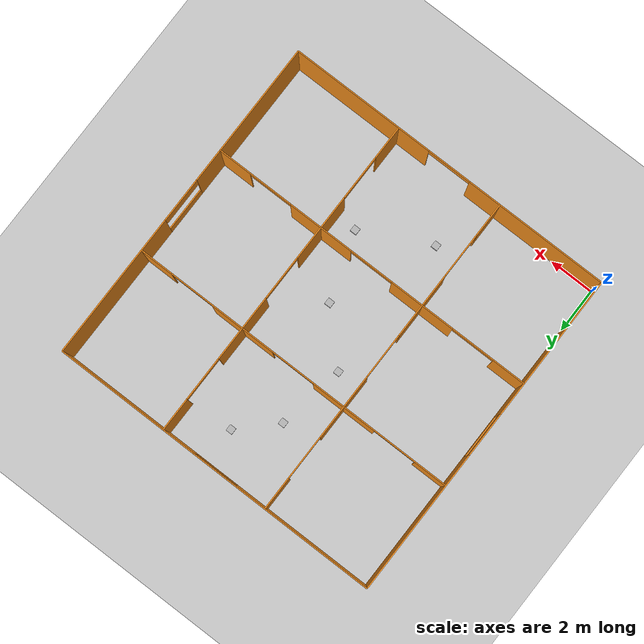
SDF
<sdf version="1.6">
  <world name="default">
    <include><uri>model://rirpc_box</uri><name>cube_5</name><pose>8.125 13.375 0 0 0 0</pose></include><include><uri>model://rirpc_box</uri><name>cube_4</name><pose>6.625 11.875 0 0 0 0</pose></include><include><uri>model://rirpc_box</uri><name>cube_3</name><pose>6.125 8.875 0 0 0 0</pose></include><include><uri>model://rirpc_box</uri><name>cube_2</name><pose>8.125 6.875 0 0 0 0</pose></include><include><uri>model://rirpc_box</uri><name>cube_1</name><pose>9.125 3.875 0 0 0 0</pose></include><include><uri>model://rirpc_box</uri><name>cube_0</name><pose>6.125 2.375 0 0 0 0</pose></include><model name="window_3">
  <pose frame="">7.5 15.0 1.75 0 0 -0.0</pose>
  <link name="top">
    <pose>0 0 1.25 0 0 0</pose>
    <inertial>
      <mass>1</mass>
      <inertia>
        <ixx>0</ixx>
        <ixy>0</ixy>
        <ixz>0</ixz>
        <iyy>0</iyy>
        <iyz>0</iyz>
        <izz>0</izz>
      </inertia>
    </inertial>
    <collision name="collision">
      <geometry>
        <box>
          <size>2.0 0.05 1.0</size>
        </box>
      </geometry>
      <max_contacts>10</max_contacts>
      <surface>
        <contact>
          <ode/>
        </contact>
        <bounce/>
        <friction>
          <torsional>
            <ode/>
          </torsional>
          <ode/>
        </friction>
      </surface>
    </collision>
    <visual name="visual">
      <geometry>
        <box>
          <size>2.0 0.05 1.0</size>
        </box>
      </geometry>
      <material>
        <script>
          <name>Gazebo/Orange</name>
          <uri>file://media/materials/scripts/gazebo.material</uri>
        </script>
      </material>
    </visual>
    <self_collide>0</self_collide>
    <enable_wind>0</enable_wind>
    <kinematic>0</kinematic>
  </link>
  <link name="bot">
    <pose>0 0 -1.25 0 0 0</pose>
    <inertial>
      <mass>1</mass>
      <inertia>
        <ixx>0</ixx>
        <ixy>0</ixy>
        <ixz>0</ixz>
        <iyy>0</iyy>
        <iyz>0</iyz>
        <izz>0</izz>
      </inertia>
    </inertial>
    <collision name="collision">
      <geometry>
        <box>
          <size>2.0 0.05 1.0</size>
        </box>
      </geometry>
      <max_contacts>10</max_contacts>
      <surface>
        <contact>
          <ode/>
        </contact>
        <bounce/>
        <friction>
          <torsional>
            <ode/>
          </torsional>
          <ode/>
        </friction>
      </surface>
    </collision>
    <visual name="visual">
      <geometry>
        <box>
          <size>2.0 0.05 1.0</size>
        </box>
      </geometry>
      <material>
        <script>
          <name>Gazebo/Orange</name>
          <uri>file://media/materials/scripts/gazebo.material</uri>
        </script>
      </material>
    </visual>
    <self_collide>0</self_collide>
    <enable_wind>0</enable_wind>
    <kinematic>0</kinematic>
  </link>
	<static>1</static>
</model><model name="window_2">
  <pose frame="">0.0 7.5 1.75 0 0 1.5707963267948966</pose>
  <link name="top">
    <pose>0 0 1.25 0 0 0</pose>
    <inertial>
      <mass>1</mass>
      <inertia>
        <ixx>0</ixx>
        <ixy>0</ixy>
        <ixz>0</ixz>
        <iyy>0</iyy>
        <iyz>0</iyz>
        <izz>0</izz>
      </inertia>
    </inertial>
    <collision name="collision">
      <geometry>
        <box>
          <size>2.0 0.05 1.0</size>
        </box>
      </geometry>
      <max_contacts>10</max_contacts>
      <surface>
        <contact>
          <ode/>
        </contact>
        <bounce/>
        <friction>
          <torsional>
            <ode/>
          </torsional>
          <ode/>
        </friction>
      </surface>
    </collision>
    <visual name="visual">
      <geometry>
        <box>
          <size>2.0 0.05 1.0</size>
        </box>
      </geometry>
      <material>
        <script>
          <name>Gazebo/Orange</name>
          <uri>file://media/materials/scripts/gazebo.material</uri>
        </script>
      </material>
    </visual>
    <self_collide>0</self_collide>
    <enable_wind>0</enable_wind>
    <kinematic>0</kinematic>
  </link>
  <link name="bot">
    <pose>0 0 -1.25 0 0 0</pose>
    <inertial>
      <mass>1</mass>
      <inertia>
        <ixx>0</ixx>
        <ixy>0</ixy>
        <ixz>0</ixz>
        <iyy>0</iyy>
        <iyz>0</iyz>
        <izz>0</izz>
      </inertia>
    </inertial>
    <collision name="collision">
      <geometry>
        <box>
          <size>2.0 0.05 1.0</size>
        </box>
      </geometry>
      <max_contacts>10</max_contacts>
      <surface>
        <contact>
          <ode/>
        </contact>
        <bounce/>
        <friction>
          <torsional>
            <ode/>
          </torsional>
          <ode/>
        </friction>
      </surface>
    </collision>
    <visual name="visual">
      <geometry>
        <box>
          <size>2.0 0.05 1.0</size>
        </box>
      </geometry>
      <material>
        <script>
          <name>Gazebo/Orange</name>
          <uri>file://media/materials/scripts/gazebo.material</uri>
        </script>
      </material>
    </visual>
    <self_collide>0</self_collide>
    <enable_wind>0</enable_wind>
    <kinematic>0</kinematic>
  </link>
	<static>1</static>
</model><model name="window_1">
  <pose frame="">15.0 7.5 1.75 0 0 1.5707963267948966</pose>
  <link name="top">
    <pose>0 0 1.25 0 0 0</pose>
    <inertial>
      <mass>1</mass>
      <inertia>
        <ixx>0</ixx>
        <ixy>0</ixy>
        <ixz>0</ixz>
        <iyy>0</iyy>
        <iyz>0</iyz>
        <izz>0</izz>
      </inertia>
    </inertial>
    <collision name="collision">
      <geometry>
        <box>
          <size>2.0 0.05 1.0</size>
        </box>
      </geometry>
      <max_contacts>10</max_contacts>
      <surface>
        <contact>
          <ode/>
        </contact>
        <bounce/>
        <friction>
          <torsional>
            <ode/>
          </torsional>
          <ode/>
        </friction>
      </surface>
    </collision>
    <visual name="visual">
      <geometry>
        <box>
          <size>2.0 0.05 1.0</size>
        </box>
      </geometry>
      <material>
        <script>
          <name>Gazebo/Orange</name>
          <uri>file://media/materials/scripts/gazebo.material</uri>
        </script>
      </material>
    </visual>
    <self_collide>0</self_collide>
    <enable_wind>0</enable_wind>
    <kinematic>0</kinematic>
  </link>
  <link name="bot">
    <pose>0 0 -1.25 0 0 0</pose>
    <inertial>
      <mass>1</mass>
      <inertia>
        <ixx>0</ixx>
        <ixy>0</ixy>
        <ixz>0</ixz>
        <iyy>0</iyy>
        <iyz>0</iyz>
        <izz>0</izz>
      </inertia>
    </inertial>
    <collision name="collision">
      <geometry>
        <box>
          <size>2.0 0.05 1.0</size>
        </box>
      </geometry>
      <max_contacts>10</max_contacts>
      <surface>
        <contact>
          <ode/>
        </contact>
        <bounce/>
        <friction>
          <torsional>
            <ode/>
          </torsional>
          <ode/>
        </friction>
      </surface>
    </collision>
    <visual name="visual">
      <geometry>
        <box>
          <size>2.0 0.05 1.0</size>
        </box>
      </geometry>
      <material>
        <script>
          <name>Gazebo/Orange</name>
          <uri>file://media/materials/scripts/gazebo.material</uri>
        </script>
      </material>
    </visual>
    <self_collide>0</self_collide>
    <enable_wind>0</enable_wind>
    <kinematic>0</kinematic>
  </link>
	<static>1</static>
</model><model name="box_38">
  <pose frame="">10.0 2.5 3.25 0 0 1.5707963267948966</pose>
  <link name="link">
    <inertial>
      <mass>1</mass>
      <inertia>
        <ixx>0</ixx>
        <ixy>0</ixy>
        <ixz>0</ixz>
        <iyy>0</iyy>
        <iyz>0</iyz>
        <izz>0</izz>
      </inertia>
    </inertial>
    <collision name="collision">
      <geometry>
        <box>
          <size>2.0 0.05 0.5</size>
        </box>
      </geometry>
      <max_contacts>10</max_contacts>
      <surface>
        <contact>
          <ode/>
        </contact>
        <bounce/>
        <friction>
          <torsional>
            <ode/>
          </torsional>
          <ode/>
        </friction>
      </surface>
    </collision>
    <visual name="visual">
      <geometry>
        <box>
          <size>2.0 0.05 0.5</size>
        </box>
      </geometry>
      <material>
        <script>
          <name>Gazebo/Orange</name>
          <uri>file://media/materials/scripts/gazebo.material</uri>
        </script>
      </material>
    </visual>
    <self_collide>0</self_collide>
    <enable_wind>0</enable_wind>
    <kinematic>0</kinematic>
  </link>
	<static>1</static>
</model><model name="box_37">
  <pose frame="">5.0 2.5 3.25 0 0 1.5707963267948966</pose>
  <link name="link">
    <inertial>
      <mass>1</mass>
      <inertia>
        <ixx>0</ixx>
        <ixy>0</ixy>
        <ixz>0</ixz>
        <iyy>0</iyy>
        <iyz>0</iyz>
        <izz>0</izz>
      </inertia>
    </inertial>
    <collision name="collision">
      <geometry>
        <box>
          <size>2.0 0.05 0.5</size>
        </box>
      </geometry>
      <max_contacts>10</max_contacts>
      <surface>
        <contact>
          <ode/>
        </contact>
        <bounce/>
        <friction>
          <torsional>
            <ode/>
          </torsional>
          <ode/>
        </friction>
      </surface>
    </collision>
    <visual name="visual">
      <geometry>
        <box>
          <size>2.0 0.05 0.5</size>
        </box>
      </geometry>
      <material>
        <script>
          <name>Gazebo/Orange</name>
          <uri>file://media/materials/scripts/gazebo.material</uri>
        </script>
      </material>
    </visual>
    <self_collide>0</self_collide>
    <enable_wind>0</enable_wind>
    <kinematic>0</kinematic>
  </link>
	<static>1</static>
</model><model name="box_36">
  <pose frame="">2.5 5.0 3.25 0 0 -3.141592653589793</pose>
  <link name="link">
    <inertial>
      <mass>1</mass>
      <inertia>
        <ixx>0</ixx>
        <ixy>0</ixy>
        <ixz>0</ixz>
        <iyy>0</iyy>
        <iyz>0</iyz>
        <izz>0</izz>
      </inertia>
    </inertial>
    <collision name="collision">
      <geometry>
        <box>
          <size>2.0 0.05 0.5</size>
        </box>
      </geometry>
      <max_contacts>10</max_contacts>
      <surface>
        <contact>
          <ode/>
        </contact>
        <bounce/>
        <friction>
          <torsional>
            <ode/>
          </torsional>
          <ode/>
        </friction>
      </surface>
    </collision>
    <visual name="visual">
      <geometry>
        <box>
          <size>2.0 0.05 0.5</size>
        </box>
      </geometry>
      <material>
        <script>
          <name>Gazebo/Orange</name>
          <uri>file://media/materials/scripts/gazebo.material</uri>
        </script>
      </material>
    </visual>
    <self_collide>0</self_collide>
    <enable_wind>0</enable_wind>
    <kinematic>0</kinematic>
  </link>
	<static>1</static>
</model><model name="box_35">
  <pose frame="">2.5 10.0 3.25 0 0 -3.141592653589793</pose>
  <link name="link">
    <inertial>
      <mass>1</mass>
      <inertia>
        <ixx>0</ixx>
        <ixy>0</ixy>
        <ixz>0</ixz>
        <iyy>0</iyy>
        <iyz>0</iyz>
        <izz>0</izz>
      </inertia>
    </inertial>
    <collision name="collision">
      <geometry>
        <box>
          <size>2.0 0.05 0.5</size>
        </box>
      </geometry>
      <max_contacts>10</max_contacts>
      <surface>
        <contact>
          <ode/>
        </contact>
        <bounce/>
        <friction>
          <torsional>
            <ode/>
          </torsional>
          <ode/>
        </friction>
      </surface>
    </collision>
    <visual name="visual">
      <geometry>
        <box>
          <size>2.0 0.05 0.5</size>
        </box>
      </geometry>
      <material>
        <script>
          <name>Gazebo/Orange</name>
          <uri>file://media/materials/scripts/gazebo.material</uri>
        </script>
      </material>
    </visual>
    <self_collide>0</self_collide>
    <enable_wind>0</enable_wind>
    <kinematic>0</kinematic>
  </link>
	<static>1</static>
</model><model name="box_34">
  <pose frame="">5.0 12.5 3.25 0 0 1.5707963267948966</pose>
  <link name="link">
    <inertial>
      <mass>1</mass>
      <inertia>
        <ixx>0</ixx>
        <ixy>0</ixy>
        <ixz>0</ixz>
        <iyy>0</iyy>
        <iyz>0</iyz>
        <izz>0</izz>
      </inertia>
    </inertial>
    <collision name="collision">
      <geometry>
        <box>
          <size>2.0 0.05 0.5</size>
        </box>
      </geometry>
      <max_contacts>10</max_contacts>
      <surface>
        <contact>
          <ode/>
        </contact>
        <bounce/>
        <friction>
          <torsional>
            <ode/>
          </torsional>
          <ode/>
        </friction>
      </surface>
    </collision>
    <visual name="visual">
      <geometry>
        <box>
          <size>2.0 0.05 0.5</size>
        </box>
      </geometry>
      <material>
        <script>
          <name>Gazebo/Orange</name>
          <uri>file://media/materials/scripts/gazebo.material</uri>
        </script>
      </material>
    </visual>
    <self_collide>0</self_collide>
    <enable_wind>0</enable_wind>
    <kinematic>0</kinematic>
  </link>
	<static>1</static>
</model><model name="box_33">
  <pose frame="">10.0 12.5 3.25 0 0 -1.5707963267948966</pose>
  <link name="link">
    <inertial>
      <mass>1</mass>
      <inertia>
        <ixx>0</ixx>
        <ixy>0</ixy>
        <ixz>0</ixz>
        <iyy>0</iyy>
        <iyz>0</iyz>
        <izz>0</izz>
      </inertia>
    </inertial>
    <collision name="collision">
      <geometry>
        <box>
          <size>2.0 0.05 0.5</size>
        </box>
      </geometry>
      <max_contacts>10</max_contacts>
      <surface>
        <contact>
          <ode/>
        </contact>
        <bounce/>
        <friction>
          <torsional>
            <ode/>
          </torsional>
          <ode/>
        </friction>
      </surface>
    </collision>
    <visual name="visual">
      <geometry>
        <box>
          <size>2.0 0.05 0.5</size>
        </box>
      </geometry>
      <material>
        <script>
          <name>Gazebo/Orange</name>
          <uri>file://media/materials/scripts/gazebo.material</uri>
        </script>
      </material>
    </visual>
    <self_collide>0</self_collide>
    <enable_wind>0</enable_wind>
    <kinematic>0</kinematic>
  </link>
	<static>1</static>
</model><model name="box_32">
  <pose frame="">12.5 10.0 3.25 0 0 -3.141592653589793</pose>
  <link name="link">
    <inertial>
      <mass>1</mass>
      <inertia>
        <ixx>0</ixx>
        <ixy>0</ixy>
        <ixz>0</ixz>
        <iyy>0</iyy>
        <iyz>0</iyz>
        <izz>0</izz>
      </inertia>
    </inertial>
    <collision name="collision">
      <geometry>
        <box>
          <size>2.0 0.05 0.5</size>
        </box>
      </geometry>
      <max_contacts>10</max_contacts>
      <surface>
        <contact>
          <ode/>
        </contact>
        <bounce/>
        <friction>
          <torsional>
            <ode/>
          </torsional>
          <ode/>
        </friction>
      </surface>
    </collision>
    <visual name="visual">
      <geometry>
        <box>
          <size>2.0 0.05 0.5</size>
        </box>
      </geometry>
      <material>
        <script>
          <name>Gazebo/Orange</name>
          <uri>file://media/materials/scripts/gazebo.material</uri>
        </script>
      </material>
    </visual>
    <self_collide>0</self_collide>
    <enable_wind>0</enable_wind>
    <kinematic>0</kinematic>
  </link>
	<static>1</static>
</model><model name="box_31">
  <pose frame="">12.5 5.0 3.25 0 0 -3.141592653589793</pose>
  <link name="link">
    <inertial>
      <mass>1</mass>
      <inertia>
        <ixx>0</ixx>
        <ixy>0</ixy>
        <ixz>0</ixz>
        <iyy>0</iyy>
        <iyz>0</iyz>
        <izz>0</izz>
      </inertia>
    </inertial>
    <collision name="collision">
      <geometry>
        <box>
          <size>2.0 0.05 0.5</size>
        </box>
      </geometry>
      <max_contacts>10</max_contacts>
      <surface>
        <contact>
          <ode/>
        </contact>
        <bounce/>
        <friction>
          <torsional>
            <ode/>
          </torsional>
          <ode/>
        </friction>
      </surface>
    </collision>
    <visual name="visual">
      <geometry>
        <box>
          <size>2.0 0.05 0.5</size>
        </box>
      </geometry>
      <material>
        <script>
          <name>Gazebo/Orange</name>
          <uri>file://media/materials/scripts/gazebo.material</uri>
        </script>
      </material>
    </visual>
    <self_collide>0</self_collide>
    <enable_wind>0</enable_wind>
    <kinematic>0</kinematic>
  </link>
	<static>1</static>
</model><model name="box_30">
  <pose frame="">10.0 7.5 3.25 0 0 1.5707963267948966</pose>
  <link name="link">
    <inertial>
      <mass>1</mass>
      <inertia>
        <ixx>0</ixx>
        <ixy>0</ixy>
        <ixz>0</ixz>
        <iyy>0</iyy>
        <iyz>0</iyz>
        <izz>0</izz>
      </inertia>
    </inertial>
    <collision name="collision">
      <geometry>
        <box>
          <size>2.0 0.05 0.5</size>
        </box>
      </geometry>
      <max_contacts>10</max_contacts>
      <surface>
        <contact>
          <ode/>
        </contact>
        <bounce/>
        <friction>
          <torsional>
            <ode/>
          </torsional>
          <ode/>
        </friction>
      </surface>
    </collision>
    <visual name="visual">
      <geometry>
        <box>
          <size>2.0 0.05 0.5</size>
        </box>
      </geometry>
      <material>
        <script>
          <name>Gazebo/Orange</name>
          <uri>file://media/materials/scripts/gazebo.material</uri>
        </script>
      </material>
    </visual>
    <self_collide>0</self_collide>
    <enable_wind>0</enable_wind>
    <kinematic>0</kinematic>
  </link>
	<static>1</static>
</model><model name="box_29">
  <pose frame="">5.0 7.5 3.25 0 0 1.5707963267948966</pose>
  <link name="link">
    <inertial>
      <mass>1</mass>
      <inertia>
        <ixx>0</ixx>
        <ixy>0</ixy>
        <ixz>0</ixz>
        <iyy>0</iyy>
        <iyz>0</iyz>
        <izz>0</izz>
      </inertia>
    </inertial>
    <collision name="collision">
      <geometry>
        <box>
          <size>2.0 0.05 0.5</size>
        </box>
      </geometry>
      <max_contacts>10</max_contacts>
      <surface>
        <contact>
          <ode/>
        </contact>
        <bounce/>
        <friction>
          <torsional>
            <ode/>
          </torsional>
          <ode/>
        </friction>
      </surface>
    </collision>
    <visual name="visual">
      <geometry>
        <box>
          <size>2.0 0.05 0.5</size>
        </box>
      </geometry>
      <material>
        <script>
          <name>Gazebo/Orange</name>
          <uri>file://media/materials/scripts/gazebo.material</uri>
        </script>
      </material>
    </visual>
    <self_collide>0</self_collide>
    <enable_wind>0</enable_wind>
    <kinematic>0</kinematic>
  </link>
	<static>1</static>
</model><model name="box_28">
  <pose frame="">7.5 10.0 3.25 0 0 -0.0</pose>
  <link name="link">
    <inertial>
      <mass>1</mass>
      <inertia>
        <ixx>0</ixx>
        <ixy>0</ixy>
        <ixz>0</ixz>
        <iyy>0</iyy>
        <iyz>0</iyz>
        <izz>0</izz>
      </inertia>
    </inertial>
    <collision name="collision">
      <geometry>
        <box>
          <size>2.0 0.05 0.5</size>
        </box>
      </geometry>
      <max_contacts>10</max_contacts>
      <surface>
        <contact>
          <ode/>
        </contact>
        <bounce/>
        <friction>
          <torsional>
            <ode/>
          </torsional>
          <ode/>
        </friction>
      </surface>
    </collision>
    <visual name="visual">
      <geometry>
        <box>
          <size>2.0 0.05 0.5</size>
        </box>
      </geometry>
      <material>
        <script>
          <name>Gazebo/Orange</name>
          <uri>file://media/materials/scripts/gazebo.material</uri>
        </script>
      </material>
    </visual>
    <self_collide>0</self_collide>
    <enable_wind>0</enable_wind>
    <kinematic>0</kinematic>
  </link>
	<static>1</static>
</model><model name="box_27">
  <pose frame="">7.5 5.0 3.25 0 0 -0.0</pose>
  <link name="link">
    <inertial>
      <mass>1</mass>
      <inertia>
        <ixx>0</ixx>
        <ixy>0</ixy>
        <ixz>0</ixz>
        <iyy>0</iyy>
        <iyz>0</iyz>
        <izz>0</izz>
      </inertia>
    </inertial>
    <collision name="collision">
      <geometry>
        <box>
          <size>2.0 0.05 0.5</size>
        </box>
      </geometry>
      <max_contacts>10</max_contacts>
      <surface>
        <contact>
          <ode/>
        </contact>
        <bounce/>
        <friction>
          <torsional>
            <ode/>
          </torsional>
          <ode/>
        </friction>
      </surface>
    </collision>
    <visual name="visual">
      <geometry>
        <box>
          <size>2.0 0.05 0.5</size>
        </box>
      </geometry>
      <material>
        <script>
          <name>Gazebo/Orange</name>
          <uri>file://media/materials/scripts/gazebo.material</uri>
        </script>
      </material>
    </visual>
    <self_collide>0</self_collide>
    <enable_wind>0</enable_wind>
    <kinematic>0</kinematic>
  </link>
	<static>1</static>
</model><model name="box_26">
  <pose frame="">7.5 0.0 3.25 0 0 -3.141592653589793</pose>
  <link name="link">
    <inertial>
      <mass>1</mass>
      <inertia>
        <ixx>0</ixx>
        <ixy>0</ixy>
        <ixz>0</ixz>
        <iyy>0</iyy>
        <iyz>0</iyz>
        <izz>0</izz>
      </inertia>
    </inertial>
    <collision name="collision">
      <geometry>
        <box>
          <size>2.0 0.05 0.5</size>
        </box>
      </geometry>
      <max_contacts>10</max_contacts>
      <surface>
        <contact>
          <ode/>
        </contact>
        <bounce/>
        <friction>
          <torsional>
            <ode/>
          </torsional>
          <ode/>
        </friction>
      </surface>
    </collision>
    <visual name="visual">
      <geometry>
        <box>
          <size>2.0 0.05 0.5</size>
        </box>
      </geometry>
      <material>
        <script>
          <name>Gazebo/Orange</name>
          <uri>file://media/materials/scripts/gazebo.material</uri>
        </script>
      </material>
    </visual>
    <self_collide>0</self_collide>
    <enable_wind>0</enable_wind>
    <kinematic>0</kinematic>
  </link>
	<static>1</static>
</model><model name="box_25">
  <pose frame="">3.25 15.0 1.75 0 0 -0.0</pose>
  <link name="link">
    <inertial>
      <mass>1</mass>
      <inertia>
        <ixx>0</ixx>
        <ixy>0</ixy>
        <ixz>0</ixz>
        <iyy>0</iyy>
        <iyz>0</iyz>
        <izz>0</izz>
      </inertia>
    </inertial>
    <collision name="collision">
      <geometry>
        <box>
          <size>6.5 0.05 3.5</size>
        </box>
      </geometry>
      <max_contacts>10</max_contacts>
      <surface>
        <contact>
          <ode/>
        </contact>
        <bounce/>
        <friction>
          <torsional>
            <ode/>
          </torsional>
          <ode/>
        </friction>
      </surface>
    </collision>
    <visual name="visual">
      <geometry>
        <box>
          <size>6.5 0.05 3.5</size>
        </box>
      </geometry>
      <material>
        <script>
          <name>Gazebo/Orange</name>
          <uri>file://media/materials/scripts/gazebo.material</uri>
        </script>
      </material>
    </visual>
    <self_collide>0</self_collide>
    <enable_wind>0</enable_wind>
    <kinematic>0</kinematic>
  </link>
	<static>1</static>
</model><model name="box_24">
  <pose frame="">11.75 15.0 1.75 0 0 -0.0</pose>
  <link name="link">
    <inertial>
      <mass>1</mass>
      <inertia>
        <ixx>0</ixx>
        <ixy>0</ixy>
        <ixz>0</ixz>
        <iyy>0</iyy>
        <iyz>0</iyz>
        <izz>0</izz>
      </inertia>
    </inertial>
    <collision name="collision">
      <geometry>
        <box>
          <size>6.5 0.05 3.5</size>
        </box>
      </geometry>
      <max_contacts>10</max_contacts>
      <surface>
        <contact>
          <ode/>
        </contact>
        <bounce/>
        <friction>
          <torsional>
            <ode/>
          </torsional>
          <ode/>
        </friction>
      </surface>
    </collision>
    <visual name="visual">
      <geometry>
        <box>
          <size>6.5 0.05 3.5</size>
        </box>
      </geometry>
      <material>
        <script>
          <name>Gazebo/Orange</name>
          <uri>file://media/materials/scripts/gazebo.material</uri>
        </script>
      </material>
    </visual>
    <self_collide>0</self_collide>
    <enable_wind>0</enable_wind>
    <kinematic>0</kinematic>
  </link>
	<static>1</static>
</model><model name="box_23">
  <pose frame="">5.75 5.0 1.75 0 0 -3.141592653589793</pose>
  <link name="link">
    <inertial>
      <mass>1</mass>
      <inertia>
        <ixx>0</ixx>
        <ixy>0</ixy>
        <ixz>0</ixz>
        <iyy>0</iyy>
        <iyz>0</iyz>
        <izz>0</izz>
      </inertia>
    </inertial>
    <collision name="collision">
      <geometry>
        <box>
          <size>1.5 0.05 3.5</size>
        </box>
      </geometry>
      <max_contacts>10</max_contacts>
      <surface>
        <contact>
          <ode/>
        </contact>
        <bounce/>
        <friction>
          <torsional>
            <ode/>
          </torsional>
          <ode/>
        </friction>
      </surface>
    </collision>
    <visual name="visual">
      <geometry>
        <box>
          <size>1.5 0.05 3.5</size>
        </box>
      </geometry>
      <material>
        <script>
          <name>Gazebo/Orange</name>
          <uri>file://media/materials/scripts/gazebo.material</uri>
        </script>
      </material>
    </visual>
    <self_collide>0</self_collide>
    <enable_wind>0</enable_wind>
    <kinematic>0</kinematic>
  </link>
	<static>1</static>
</model><model name="box_22">
  <pose frame="">4.25 5.0 1.75 0 0 -3.141592653589793</pose>
  <link name="link">
    <inertial>
      <mass>1</mass>
      <inertia>
        <ixx>0</ixx>
        <ixy>0</ixy>
        <ixz>0</ixz>
        <iyy>0</iyy>
        <iyz>0</iyz>
        <izz>0</izz>
      </inertia>
    </inertial>
    <collision name="collision">
      <geometry>
        <box>
          <size>1.5 0.05 3.5</size>
        </box>
      </geometry>
      <max_contacts>10</max_contacts>
      <surface>
        <contact>
          <ode/>
        </contact>
        <bounce/>
        <friction>
          <torsional>
            <ode/>
          </torsional>
          <ode/>
        </friction>
      </surface>
    </collision>
    <visual name="visual">
      <geometry>
        <box>
          <size>1.5 0.05 3.5</size>
        </box>
      </geometry>
      <material>
        <script>
          <name>Gazebo/Orange</name>
          <uri>file://media/materials/scripts/gazebo.material</uri>
        </script>
      </material>
    </visual>
    <self_collide>0</self_collide>
    <enable_wind>0</enable_wind>
    <kinematic>0</kinematic>
  </link>
	<static>1</static>
</model><model name="box_21">
  <pose frame="">0.75 5.0 1.75 0 0 -3.141592653589793</pose>
  <link name="link">
    <inertial>
      <mass>1</mass>
      <inertia>
        <ixx>0</ixx>
        <ixy>0</ixy>
        <ixz>0</ixz>
        <iyy>0</iyy>
        <iyz>0</iyz>
        <izz>0</izz>
      </inertia>
    </inertial>
    <collision name="collision">
      <geometry>
        <box>
          <size>1.5 0.05 3.5</size>
        </box>
      </geometry>
      <max_contacts>10</max_contacts>
      <surface>
        <contact>
          <ode/>
        </contact>
        <bounce/>
        <friction>
          <torsional>
            <ode/>
          </torsional>
          <ode/>
        </friction>
      </surface>
    </collision>
    <visual name="visual">
      <geometry>
        <box>
          <size>1.5 0.05 3.5</size>
        </box>
      </geometry>
      <material>
        <script>
          <name>Gazebo/Orange</name>
          <uri>file://media/materials/scripts/gazebo.material</uri>
        </script>
      </material>
    </visual>
    <self_collide>0</self_collide>
    <enable_wind>0</enable_wind>
    <kinematic>0</kinematic>
  </link>
	<static>1</static>
</model><model name="box_20">
  <pose frame="">5.0 14.25 1.75 0 0 -1.5707963267948966</pose>
  <link name="link">
    <inertial>
      <mass>1</mass>
      <inertia>
        <ixx>0</ixx>
        <ixy>0</ixy>
        <ixz>0</ixz>
        <iyy>0</iyy>
        <iyz>0</iyz>
        <izz>0</izz>
      </inertia>
    </inertial>
    <collision name="collision">
      <geometry>
        <box>
          <size>1.5 0.05 3.5</size>
        </box>
      </geometry>
      <max_contacts>10</max_contacts>
      <surface>
        <contact>
          <ode/>
        </contact>
        <bounce/>
        <friction>
          <torsional>
            <ode/>
          </torsional>
          <ode/>
        </friction>
      </surface>
    </collision>
    <visual name="visual">
      <geometry>
        <box>
          <size>1.5 0.05 3.5</size>
        </box>
      </geometry>
      <material>
        <script>
          <name>Gazebo/Orange</name>
          <uri>file://media/materials/scripts/gazebo.material</uri>
        </script>
      </material>
    </visual>
    <self_collide>0</self_collide>
    <enable_wind>0</enable_wind>
    <kinematic>0</kinematic>
  </link>
	<static>1</static>
</model><model name="box_19">
  <pose frame="">5.0 10.0 1.75 0 0 -1.5707963267948966</pose>
  <link name="link">
    <inertial>
      <mass>1</mass>
      <inertia>
        <ixx>0</ixx>
        <ixy>0</ixy>
        <ixz>0</ixz>
        <iyy>0</iyy>
        <iyz>0</iyz>
        <izz>0</izz>
      </inertia>
    </inertial>
    <collision name="collision">
      <geometry>
        <box>
          <size>3.0 0.05 3.5</size>
        </box>
      </geometry>
      <max_contacts>10</max_contacts>
      <surface>
        <contact>
          <ode/>
        </contact>
        <bounce/>
        <friction>
          <torsional>
            <ode/>
          </torsional>
          <ode/>
        </friction>
      </surface>
    </collision>
    <visual name="visual">
      <geometry>
        <box>
          <size>3.0 0.05 3.5</size>
        </box>
      </geometry>
      <material>
        <script>
          <name>Gazebo/Orange</name>
          <uri>file://media/materials/scripts/gazebo.material</uri>
        </script>
      </material>
    </visual>
    <self_collide>0</self_collide>
    <enable_wind>0</enable_wind>
    <kinematic>0</kinematic>
  </link>
	<static>1</static>
</model><model name="box_18">
  <pose frame="">5.0 5.0 1.75 0 0 -1.5707963267948966</pose>
  <link name="link">
    <inertial>
      <mass>1</mass>
      <inertia>
        <ixx>0</ixx>
        <ixy>0</ixy>
        <ixz>0</ixz>
        <iyy>0</iyy>
        <iyz>0</iyz>
        <izz>0</izz>
      </inertia>
    </inertial>
    <collision name="collision">
      <geometry>
        <box>
          <size>3.0 0.05 3.5</size>
        </box>
      </geometry>
      <max_contacts>10</max_contacts>
      <surface>
        <contact>
          <ode/>
        </contact>
        <bounce/>
        <friction>
          <torsional>
            <ode/>
          </torsional>
          <ode/>
        </friction>
      </surface>
    </collision>
    <visual name="visual">
      <geometry>
        <box>
          <size>3.0 0.05 3.5</size>
        </box>
      </geometry>
      <material>
        <script>
          <name>Gazebo/Orange</name>
          <uri>file://media/materials/scripts/gazebo.material</uri>
        </script>
      </material>
    </visual>
    <self_collide>0</self_collide>
    <enable_wind>0</enable_wind>
    <kinematic>0</kinematic>
  </link>
	<static>1</static>
</model><model name="box_17">
  <pose frame="">5.0 0.75 1.75 0 0 -1.5707963267948966</pose>
  <link name="link">
    <inertial>
      <mass>1</mass>
      <inertia>
        <ixx>0</ixx>
        <ixy>0</ixy>
        <ixz>0</ixz>
        <iyy>0</iyy>
        <iyz>0</iyz>
        <izz>0</izz>
      </inertia>
    </inertial>
    <collision name="collision">
      <geometry>
        <box>
          <size>1.5 0.05 3.5</size>
        </box>
      </geometry>
      <max_contacts>10</max_contacts>
      <surface>
        <contact>
          <ode/>
        </contact>
        <bounce/>
        <friction>
          <torsional>
            <ode/>
          </torsional>
          <ode/>
        </friction>
      </surface>
    </collision>
    <visual name="visual">
      <geometry>
        <box>
          <size>1.5 0.05 3.5</size>
        </box>
      </geometry>
      <material>
        <script>
          <name>Gazebo/Orange</name>
          <uri>file://media/materials/scripts/gazebo.material</uri>
        </script>
      </material>
    </visual>
    <self_collide>0</self_collide>
    <enable_wind>0</enable_wind>
    <kinematic>0</kinematic>
  </link>
	<static>1</static>
</model><model name="box_16">
  <pose frame="">10.0 0.75 1.75 0 0 1.5707963267948966</pose>
  <link name="link">
    <inertial>
      <mass>1</mass>
      <inertia>
        <ixx>0</ixx>
        <ixy>0</ixy>
        <ixz>0</ixz>
        <iyy>0</iyy>
        <iyz>0</iyz>
        <izz>0</izz>
      </inertia>
    </inertial>
    <collision name="collision">
      <geometry>
        <box>
          <size>1.5 0.05 3.5</size>
        </box>
      </geometry>
      <max_contacts>10</max_contacts>
      <surface>
        <contact>
          <ode/>
        </contact>
        <bounce/>
        <friction>
          <torsional>
            <ode/>
          </torsional>
          <ode/>
        </friction>
      </surface>
    </collision>
    <visual name="visual">
      <geometry>
        <box>
          <size>1.5 0.05 3.5</size>
        </box>
      </geometry>
      <material>
        <script>
          <name>Gazebo/Orange</name>
          <uri>file://media/materials/scripts/gazebo.material</uri>
        </script>
      </material>
    </visual>
    <self_collide>0</self_collide>
    <enable_wind>0</enable_wind>
    <kinematic>0</kinematic>
  </link>
	<static>1</static>
</model><model name="box_15">
  <pose frame="">14.25 5.0 1.75 0 0 -3.141592653589793</pose>
  <link name="link">
    <inertial>
      <mass>1</mass>
      <inertia>
        <ixx>0</ixx>
        <ixy>0</ixy>
        <ixz>0</ixz>
        <iyy>0</iyy>
        <iyz>0</iyz>
        <izz>0</izz>
      </inertia>
    </inertial>
    <collision name="collision">
      <geometry>
        <box>
          <size>1.5 0.05 3.5</size>
        </box>
      </geometry>
      <max_contacts>10</max_contacts>
      <surface>
        <contact>
          <ode/>
        </contact>
        <bounce/>
        <friction>
          <torsional>
            <ode/>
          </torsional>
          <ode/>
        </friction>
      </surface>
    </collision>
    <visual name="visual">
      <geometry>
        <box>
          <size>1.5 0.05 3.5</size>
        </box>
      </geometry>
      <material>
        <script>
          <name>Gazebo/Orange</name>
          <uri>file://media/materials/scripts/gazebo.material</uri>
        </script>
      </material>
    </visual>
    <self_collide>0</self_collide>
    <enable_wind>0</enable_wind>
    <kinematic>0</kinematic>
  </link>
	<static>1</static>
</model><model name="box_14">
  <pose frame="">10.0 5.0 1.75 0 0 -3.141592653589793</pose>
  <link name="link">
    <inertial>
      <mass>1</mass>
      <inertia>
        <ixx>0</ixx>
        <ixy>0</ixy>
        <ixz>0</ixz>
        <iyy>0</iyy>
        <iyz>0</iyz>
        <izz>0</izz>
      </inertia>
    </inertial>
    <collision name="collision">
      <geometry>
        <box>
          <size>3.0 0.05 3.5</size>
        </box>
      </geometry>
      <max_contacts>10</max_contacts>
      <surface>
        <contact>
          <ode/>
        </contact>
        <bounce/>
        <friction>
          <torsional>
            <ode/>
          </torsional>
          <ode/>
        </friction>
      </surface>
    </collision>
    <visual name="visual">
      <geometry>
        <box>
          <size>3.0 0.05 3.5</size>
        </box>
      </geometry>
      <material>
        <script>
          <name>Gazebo/Orange</name>
          <uri>file://media/materials/scripts/gazebo.material</uri>
        </script>
      </material>
    </visual>
    <self_collide>0</self_collide>
    <enable_wind>0</enable_wind>
    <kinematic>0</kinematic>
  </link>
	<static>1</static>
</model><model name="box_13">
  <pose frame="">10.0 5.0 1.75 0 0 1.5707963267948966</pose>
  <link name="link">
    <inertial>
      <mass>1</mass>
      <inertia>
        <ixx>0</ixx>
        <ixy>0</ixy>
        <ixz>0</ixz>
        <iyy>0</iyy>
        <iyz>0</iyz>
        <izz>0</izz>
      </inertia>
    </inertial>
    <collision name="collision">
      <geometry>
        <box>
          <size>3.0 0.05 3.5</size>
        </box>
      </geometry>
      <max_contacts>10</max_contacts>
      <surface>
        <contact>
          <ode/>
        </contact>
        <bounce/>
        <friction>
          <torsional>
            <ode/>
          </torsional>
          <ode/>
        </friction>
      </surface>
    </collision>
    <visual name="visual">
      <geometry>
        <box>
          <size>3.0 0.05 3.5</size>
        </box>
      </geometry>
      <material>
        <script>
          <name>Gazebo/Orange</name>
          <uri>file://media/materials/scripts/gazebo.material</uri>
        </script>
      </material>
    </visual>
    <self_collide>0</self_collide>
    <enable_wind>0</enable_wind>
    <kinematic>0</kinematic>
  </link>
	<static>1</static>
</model><model name="box_12">
  <pose frame="">10.0 10.0 1.75 0 0 1.5707963267948966</pose>
  <link name="link">
    <inertial>
      <mass>1</mass>
      <inertia>
        <ixx>0</ixx>
        <ixy>0</ixy>
        <ixz>0</ixz>
        <iyy>0</iyy>
        <iyz>0</iyz>
        <izz>0</izz>
      </inertia>
    </inertial>
    <collision name="collision">
      <geometry>
        <box>
          <size>3.0 0.05 3.5</size>
        </box>
      </geometry>
      <max_contacts>10</max_contacts>
      <surface>
        <contact>
          <ode/>
        </contact>
        <bounce/>
        <friction>
          <torsional>
            <ode/>
          </torsional>
          <ode/>
        </friction>
      </surface>
    </collision>
    <visual name="visual">
      <geometry>
        <box>
          <size>3.0 0.05 3.5</size>
        </box>
      </geometry>
      <material>
        <script>
          <name>Gazebo/Orange</name>
          <uri>file://media/materials/scripts/gazebo.material</uri>
        </script>
      </material>
    </visual>
    <self_collide>0</self_collide>
    <enable_wind>0</enable_wind>
    <kinematic>0</kinematic>
  </link>
	<static>1</static>
</model><model name="box_11">
  <pose frame="">10.0 14.25 1.75 0 0 1.5707963267948966</pose>
  <link name="link">
    <inertial>
      <mass>1</mass>
      <inertia>
        <ixx>0</ixx>
        <ixy>0</ixy>
        <ixz>0</ixz>
        <iyy>0</iyy>
        <iyz>0</iyz>
        <izz>0</izz>
      </inertia>
    </inertial>
    <collision name="collision">
      <geometry>
        <box>
          <size>1.5 0.05 3.5</size>
        </box>
      </geometry>
      <max_contacts>10</max_contacts>
      <surface>
        <contact>
          <ode/>
        </contact>
        <bounce/>
        <friction>
          <torsional>
            <ode/>
          </torsional>
          <ode/>
        </friction>
      </surface>
    </collision>
    <visual name="visual">
      <geometry>
        <box>
          <size>1.5 0.05 3.5</size>
        </box>
      </geometry>
      <material>
        <script>
          <name>Gazebo/Orange</name>
          <uri>file://media/materials/scripts/gazebo.material</uri>
        </script>
      </material>
    </visual>
    <self_collide>0</self_collide>
    <enable_wind>0</enable_wind>
    <kinematic>0</kinematic>
  </link>
	<static>1</static>
</model><model name="box_10">
  <pose frame="">14.25 10.0 1.75 0 0 -3.141592653589793</pose>
  <link name="link">
    <inertial>
      <mass>1</mass>
      <inertia>
        <ixx>0</ixx>
        <ixy>0</ixy>
        <ixz>0</ixz>
        <iyy>0</iyy>
        <iyz>0</iyz>
        <izz>0</izz>
      </inertia>
    </inertial>
    <collision name="collision">
      <geometry>
        <box>
          <size>1.5 0.05 3.5</size>
        </box>
      </geometry>
      <max_contacts>10</max_contacts>
      <surface>
        <contact>
          <ode/>
        </contact>
        <bounce/>
        <friction>
          <torsional>
            <ode/>
          </torsional>
          <ode/>
        </friction>
      </surface>
    </collision>
    <visual name="visual">
      <geometry>
        <box>
          <size>1.5 0.05 3.5</size>
        </box>
      </geometry>
      <material>
        <script>
          <name>Gazebo/Orange</name>
          <uri>file://media/materials/scripts/gazebo.material</uri>
        </script>
      </material>
    </visual>
    <self_collide>0</self_collide>
    <enable_wind>0</enable_wind>
    <kinematic>0</kinematic>
  </link>
	<static>1</static>
</model><model name="box_9">
  <pose frame="">10.0 10.0 1.75 0 0 -3.141592653589793</pose>
  <link name="link">
    <inertial>
      <mass>1</mass>
      <inertia>
        <ixx>0</ixx>
        <ixy>0</ixy>
        <ixz>0</ixz>
        <iyy>0</iyy>
        <iyz>0</iyz>
        <izz>0</izz>
      </inertia>
    </inertial>
    <collision name="collision">
      <geometry>
        <box>
          <size>3.0 0.05 3.5</size>
        </box>
      </geometry>
      <max_contacts>10</max_contacts>
      <surface>
        <contact>
          <ode/>
        </contact>
        <bounce/>
        <friction>
          <torsional>
            <ode/>
          </torsional>
          <ode/>
        </friction>
      </surface>
    </collision>
    <visual name="visual">
      <geometry>
        <box>
          <size>3.0 0.05 3.5</size>
        </box>
      </geometry>
      <material>
        <script>
          <name>Gazebo/Orange</name>
          <uri>file://media/materials/scripts/gazebo.material</uri>
        </script>
      </material>
    </visual>
    <self_collide>0</self_collide>
    <enable_wind>0</enable_wind>
    <kinematic>0</kinematic>
  </link>
	<static>1</static>
</model><model name="box_8">
  <pose frame="">5.0 10.0 1.75 0 0 -3.141592653589793</pose>
  <link name="link">
    <inertial>
      <mass>1</mass>
      <inertia>
        <ixx>0</ixx>
        <ixy>0</ixy>
        <ixz>0</ixz>
        <iyy>0</iyy>
        <iyz>0</iyz>
        <izz>0</izz>
      </inertia>
    </inertial>
    <collision name="collision">
      <geometry>
        <box>
          <size>3.0 0.05 3.5</size>
        </box>
      </geometry>
      <max_contacts>10</max_contacts>
      <surface>
        <contact>
          <ode/>
        </contact>
        <bounce/>
        <friction>
          <torsional>
            <ode/>
          </torsional>
          <ode/>
        </friction>
      </surface>
    </collision>
    <visual name="visual">
      <geometry>
        <box>
          <size>3.0 0.05 3.5</size>
        </box>
      </geometry>
      <material>
        <script>
          <name>Gazebo/Orange</name>
          <uri>file://media/materials/scripts/gazebo.material</uri>
        </script>
      </material>
    </visual>
    <self_collide>0</self_collide>
    <enable_wind>0</enable_wind>
    <kinematic>0</kinematic>
  </link>
	<static>1</static>
</model><model name="box_7">
  <pose frame="">0.75 10.0 1.75 0 0 -3.141592653589793</pose>
  <link name="link">
    <inertial>
      <mass>1</mass>
      <inertia>
        <ixx>0</ixx>
        <ixy>0</ixy>
        <ixz>0</ixz>
        <iyy>0</iyy>
        <iyz>0</iyz>
        <izz>0</izz>
      </inertia>
    </inertial>
    <collision name="collision">
      <geometry>
        <box>
          <size>1.5 0.05 3.5</size>
        </box>
      </geometry>
      <max_contacts>10</max_contacts>
      <surface>
        <contact>
          <ode/>
        </contact>
        <bounce/>
        <friction>
          <torsional>
            <ode/>
          </torsional>
          <ode/>
        </friction>
      </surface>
    </collision>
    <visual name="visual">
      <geometry>
        <box>
          <size>1.5 0.05 3.5</size>
        </box>
      </geometry>
      <material>
        <script>
          <name>Gazebo/Orange</name>
          <uri>file://media/materials/scripts/gazebo.material</uri>
        </script>
      </material>
    </visual>
    <self_collide>0</self_collide>
    <enable_wind>0</enable_wind>
    <kinematic>0</kinematic>
  </link>
	<static>1</static>
</model><model name="box_6">
  <pose frame="">0.0 11.75 1.75 0 0 -1.5707963267948966</pose>
  <link name="link">
    <inertial>
      <mass>1</mass>
      <inertia>
        <ixx>0</ixx>
        <ixy>0</ixy>
        <ixz>0</ixz>
        <iyy>0</iyy>
        <iyz>0</iyz>
        <izz>0</izz>
      </inertia>
    </inertial>
    <collision name="collision">
      <geometry>
        <box>
          <size>6.5 0.05 3.5</size>
        </box>
      </geometry>
      <max_contacts>10</max_contacts>
      <surface>
        <contact>
          <ode/>
        </contact>
        <bounce/>
        <friction>
          <torsional>
            <ode/>
          </torsional>
          <ode/>
        </friction>
      </surface>
    </collision>
    <visual name="visual">
      <geometry>
        <box>
          <size>6.5 0.05 3.5</size>
        </box>
      </geometry>
      <material>
        <script>
          <name>Gazebo/Orange</name>
          <uri>file://media/materials/scripts/gazebo.material</uri>
        </script>
      </material>
    </visual>
    <self_collide>0</self_collide>
    <enable_wind>0</enable_wind>
    <kinematic>0</kinematic>
  </link>
	<static>1</static>
</model><model name="box_5">
  <pose frame="">15.0 11.75 1.75 0 0 -1.5707963267948966</pose>
  <link name="link">
    <inertial>
      <mass>1</mass>
      <inertia>
        <ixx>0</ixx>
        <ixy>0</ixy>
        <ixz>0</ixz>
        <iyy>0</iyy>
        <iyz>0</iyz>
        <izz>0</izz>
      </inertia>
    </inertial>
    <collision name="collision">
      <geometry>
        <box>
          <size>6.5 0.05 3.5</size>
        </box>
      </geometry>
      <max_contacts>10</max_contacts>
      <surface>
        <contact>
          <ode/>
        </contact>
        <bounce/>
        <friction>
          <torsional>
            <ode/>
          </torsional>
          <ode/>
        </friction>
      </surface>
    </collision>
    <visual name="visual">
      <geometry>
        <box>
          <size>6.5 0.05 3.5</size>
        </box>
      </geometry>
      <material>
        <script>
          <name>Gazebo/Orange</name>
          <uri>file://media/materials/scripts/gazebo.material</uri>
        </script>
      </material>
    </visual>
    <self_collide>0</self_collide>
    <enable_wind>0</enable_wind>
    <kinematic>0</kinematic>
  </link>
	<static>1</static>
</model><model name="box_4">
  <pose frame="">15.0 3.25 1.75 0 0 -1.5707963267948966</pose>
  <link name="link">
    <inertial>
      <mass>1</mass>
      <inertia>
        <ixx>0</ixx>
        <ixy>0</ixy>
        <ixz>0</ixz>
        <iyy>0</iyy>
        <iyz>0</iyz>
        <izz>0</izz>
      </inertia>
    </inertial>
    <collision name="collision">
      <geometry>
        <box>
          <size>6.5 0.05 3.5</size>
        </box>
      </geometry>
      <max_contacts>10</max_contacts>
      <surface>
        <contact>
          <ode/>
        </contact>
        <bounce/>
        <friction>
          <torsional>
            <ode/>
          </torsional>
          <ode/>
        </friction>
      </surface>
    </collision>
    <visual name="visual">
      <geometry>
        <box>
          <size>6.5 0.05 3.5</size>
        </box>
      </geometry>
      <material>
        <script>
          <name>Gazebo/Orange</name>
          <uri>file://media/materials/scripts/gazebo.material</uri>
        </script>
      </material>
    </visual>
    <self_collide>0</self_collide>
    <enable_wind>0</enable_wind>
    <kinematic>0</kinematic>
  </link>
	<static>1</static>
</model><model name="box_3">
  <pose frame="">11.75 0.0 1.75 0 0 -3.141592653589793</pose>
  <link name="link">
    <inertial>
      <mass>1</mass>
      <inertia>
        <ixx>0</ixx>
        <ixy>0</ixy>
        <ixz>0</ixz>
        <iyy>0</iyy>
        <iyz>0</iyz>
        <izz>0</izz>
      </inertia>
    </inertial>
    <collision name="collision">
      <geometry>
        <box>
          <size>6.5 0.05 3.5</size>
        </box>
      </geometry>
      <max_contacts>10</max_contacts>
      <surface>
        <contact>
          <ode/>
        </contact>
        <bounce/>
        <friction>
          <torsional>
            <ode/>
          </torsional>
          <ode/>
        </friction>
      </surface>
    </collision>
    <visual name="visual">
      <geometry>
        <box>
          <size>6.5 0.05 3.5</size>
        </box>
      </geometry>
      <material>
        <script>
          <name>Gazebo/Orange</name>
          <uri>file://media/materials/scripts/gazebo.material</uri>
        </script>
      </material>
    </visual>
    <self_collide>0</self_collide>
    <enable_wind>0</enable_wind>
    <kinematic>0</kinematic>
  </link>
	<static>1</static>
</model><model name="box_2">
  <pose frame="">3.25 0.0 1.75 0 0 -3.141592653589793</pose>
  <link name="link">
    <inertial>
      <mass>1</mass>
      <inertia>
        <ixx>0</ixx>
        <ixy>0</ixy>
        <ixz>0</ixz>
        <iyy>0</iyy>
        <iyz>0</iyz>
        <izz>0</izz>
      </inertia>
    </inertial>
    <collision name="collision">
      <geometry>
        <box>
          <size>6.5 0.05 3.5</size>
        </box>
      </geometry>
      <max_contacts>10</max_contacts>
      <surface>
        <contact>
          <ode/>
        </contact>
        <bounce/>
        <friction>
          <torsional>
            <ode/>
          </torsional>
          <ode/>
        </friction>
      </surface>
    </collision>
    <visual name="visual">
      <geometry>
        <box>
          <size>6.5 0.05 3.5</size>
        </box>
      </geometry>
      <material>
        <script>
          <name>Gazebo/Orange</name>
          <uri>file://media/materials/scripts/gazebo.material</uri>
        </script>
      </material>
    </visual>
    <self_collide>0</self_collide>
    <enable_wind>0</enable_wind>
    <kinematic>0</kinematic>
  </link>
	<static>1</static>
</model><model name="box_1">
  <pose frame="">0.0 3.25 1.75 0 0 1.5707963267948966</pose>
  <link name="link">
    <inertial>
      <mass>1</mass>
      <inertia>
        <ixx>0</ixx>
        <ixy>0</ixy>
        <ixz>0</ixz>
        <iyy>0</iyy>
        <iyz>0</iyz>
        <izz>0</izz>
      </inertia>
    </inertial>
    <collision name="collision">
      <geometry>
        <box>
          <size>6.5 0.05 3.5</size>
        </box>
      </geometry>
      <max_contacts>10</max_contacts>
      <surface>
        <contact>
          <ode/>
        </contact>
        <bounce/>
        <friction>
          <torsional>
            <ode/>
          </torsional>
          <ode/>
        </friction>
      </surface>
    </collision>
    <visual name="visual">
      <geometry>
        <box>
          <size>6.5 0.05 3.5</size>
        </box>
      </geometry>
      <material>
        <script>
          <name>Gazebo/Orange</name>
          <uri>file://media/materials/scripts/gazebo.material</uri>
        </script>
      </material>
    </visual>
    <self_collide>0</self_collide>
    <enable_wind>0</enable_wind>
    <kinematic>0</kinematic>
  </link>
	<static>1</static>
</model><light name="sun" type="directional">
      <cast_shadows>1</cast_shadows>
      <pose frame="">0 0 10 0 -0 0</pose>
      <diffuse>0.8 0.8 0.8 1</diffuse>
      <specular>0.2 0.2 0.2 1</specular>
      <attenuation>
        <range>1000</range>
        <constant>0.9</constant>
        <linear>0.01</linear>
        <quadratic>0.001</quadratic>
      </attenuation>
      <direction>-0.5 0.1 -0.9</direction>
    </light>
    <model name="ground_plane">
      <static>1</static>
      <link name="link">
        <collision name="collision">
          <geometry>
            <plane>
              <normal>0 0 1</normal>
              <size>100 100</size>
            </plane>
          </geometry>
          <surface>
            <contact>
              <collide_bitmask>65535</collide_bitmask>
              <ode/>
            </contact>
            <friction>
              <ode>
                <mu>100</mu>
                <mu2>50</mu2>
              </ode>
              <torsional>
                <ode/>
              </torsional>
            </friction>
            <bounce/>
          </surface>
          <max_contacts>10</max_contacts>
        </collision>
        <visual name="visual">
          <cast_shadows>0</cast_shadows>
          <geometry>
            <plane>
              <normal>0 0 1</normal>
              <size>100 100</size>
            </plane>
          </geometry>
          <material>
            <script>
              <uri>file://media/materials/scripts/gazebo.material</uri>
              <name>Gazebo/Grey</name>
            </script>
          </material>
        </visual>
        <self_collide>0</self_collide>
        <enable_wind>0</enable_wind>
        <kinematic>0</kinematic>
      </link>
    </model>
    <gravity>0 0 -9.8</gravity>
    <magnetic_field>6e-06 2.3e-05 -4.2e-05</magnetic_field>
    <atmosphere type="adiabatic"/>
    <physics name="default_physics" default="0" type="ode">
      <max_step_size>0.001</max_step_size>
      <real_time_factor>1</real_time_factor>
      <real_time_update_rate>1000</real_time_update_rate>
    </physics>
    <scene>
      <ambient>0.4 0.4 0.4 1</ambient>
      <background>0.7 0.7 0.7 1</background>
      <shadows>1</shadows>
    </scene>
    <audio>
      <device>default</device>
    </audio>
    <wind/>
    <spherical_coordinates>
      <surface_model>EARTH_WGS84</surface_model>
      <latitude_deg>0</latitude_deg>
      <longitude_deg>0</longitude_deg>
      <elevation>0</elevation>
      <heading_deg>0</heading_deg>
    </spherical_coordinates>
  </world>
</sdf>

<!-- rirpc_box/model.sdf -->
<sdf version='1.6'>
  <model name='rirpc_box'>
    <link name='link'>
      <inertial>
        <mass>10</mass>
        <inertia>
          <ixx>0.166667</ixx>
          <ixy>0</ixy>
          <ixz>0</ixz>
          <iyy>0.166667</iyy>
          <iyz>0</iyz>
          <izz>0.166667</izz>
        </inertia>
        <pose frame=''>0 0 0 0 -0 0</pose>
      </inertial>
      <self_collide>0</self_collide>
      <enable_wind>0</enable_wind>
      <kinematic>0</kinematic>
      <pose frame=''>0 0 0 0 -0 0</pose>
      <visual name='visual'>
        <geometry>
          <box>
            <size>0.3 0.3 0.3</size>
          </box>
        </geometry>
        <material>
	     <script>
                  <uri>model://rirpc_box/materials/scripts</uri>
                  <uri>model://rirpc_box/materials/textures</uri>
                  <name>RirpcLogo0</name>
              </script>
        </material>
        <pose frame=''>0 0 0 0 -0 0</pose>
        <transparency>0</transparency>
        <cast_shadows>1</cast_shadows>
      </visual>
      <collision name='collision'>
        <laser_retro>0</laser_retro>
        <max_contacts>10</max_contacts>
        <pose frame=''>0 0 0 0 -0 0</pose>
        <geometry>
          <box>
            <size>0.3 0.3 0.3</size>
          </box>
        </geometry>
        <surface>
          <friction>
            <ode>
              <mu>1</mu>
              <mu2>1</mu2>
              <fdir1>0 0 0</fdir1>
              <slip1>0</slip1>
              <slip2>0</slip2>
            </ode>
            <torsional>
              <coefficient>1</coefficient>
              <patch_radius>0</patch_radius>
              <surface_radius>0</surface_radius>
              <use_patch_radius>1</use_patch_radius>
              <ode>
                <slip>0</slip>
              </ode>
            </torsional>
          </friction>
          <bounce>
            <restitution_coefficient>0</restitution_coefficient>
            <threshold>1e+06</threshold>
          </bounce>
          <contact>
            <collide_without_contact>0</collide_without_contact>
            <collide_without_contact_bitmask>1</collide_without_contact_bitmask>
            <collide_bitmask>1</collide_bitmask>
            <ode>
              <soft_cfm>0</soft_cfm>
              <soft_erp>0.2</soft_erp>
              <kp>1e+13</kp>
              <kd>1</kd>
              <max_vel>0.01</max_vel>
              <min_depth>0</min_depth>
            </ode>
            <bullet>
              <split_impulse>1</split_impulse>
              <split_impulse_penetration_threshold>-0.01</split_impulse_penetration_threshold>
              <soft_cfm>0</soft_cfm>
              <soft_erp>0.2</soft_erp>
              <kp>1e+13</kp>
              <kd>1</kd>
            </bullet>
          </contact>
        </surface>
      </collision>
    </link>
    <static>0</static>
    <allow_auto_disable>1</allow_auto_disable>
  </model>
</sdf>
